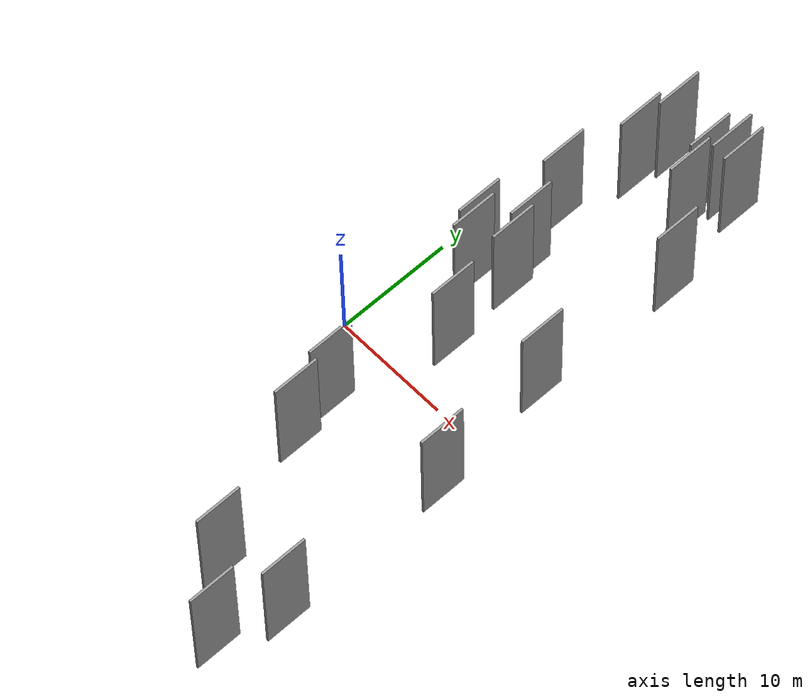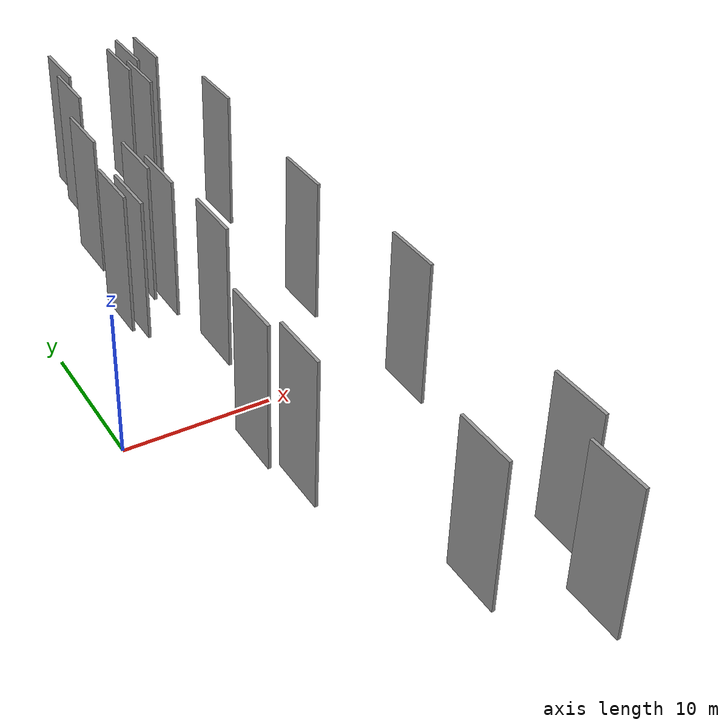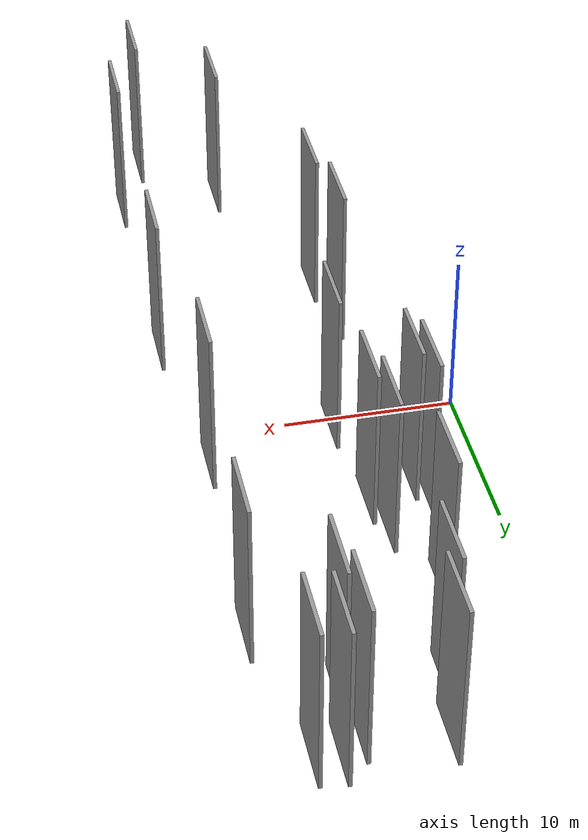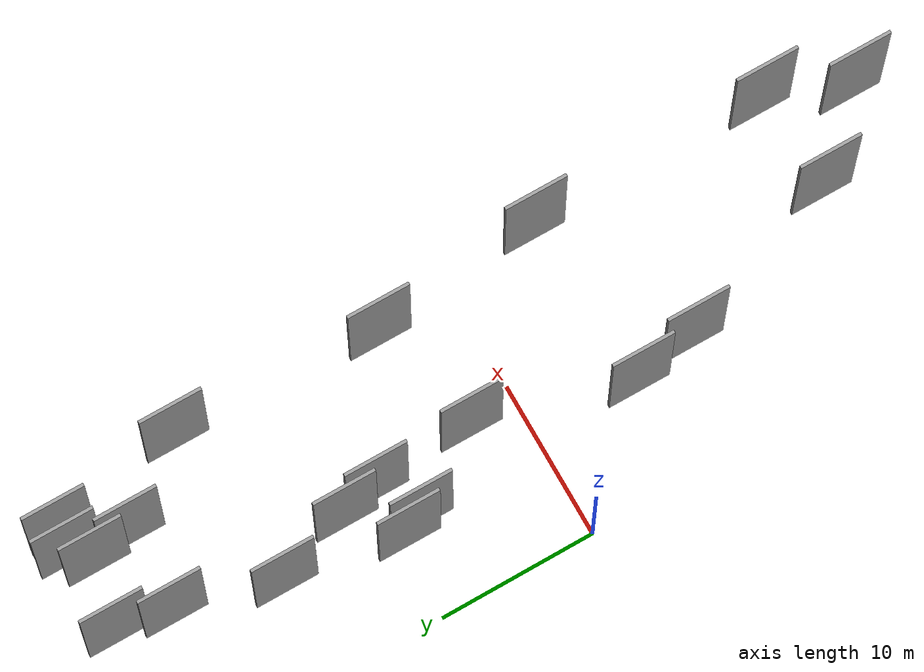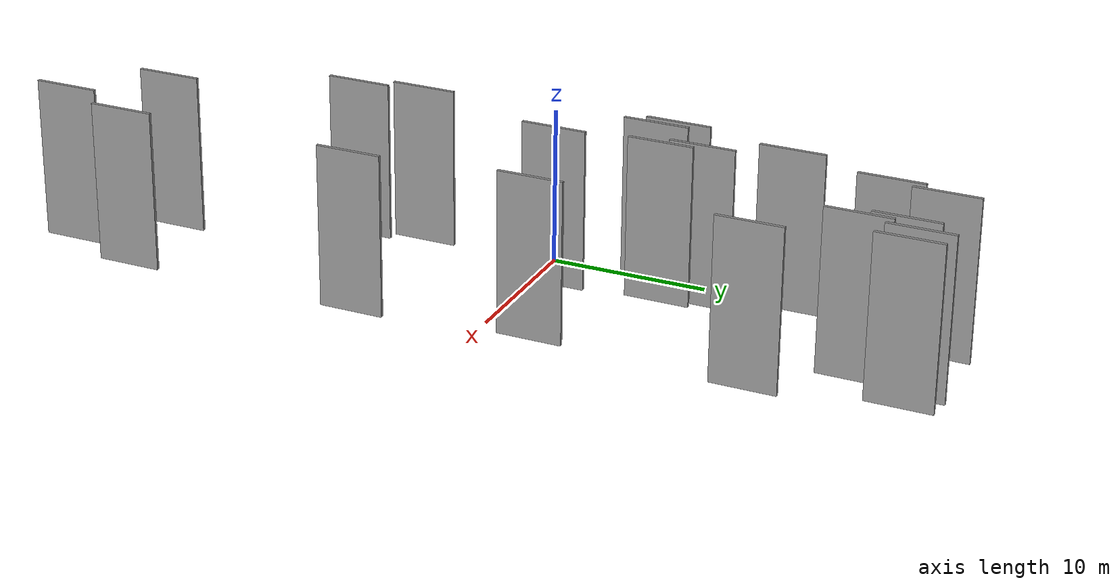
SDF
<sdf version="1.6">
 <world name="default">
  <scene>
   <sky><clouds><speed>12</speed></clouds></sky>
   <ambient>0.4 0.4 0.4 1</ambient>
   <background>0.7 0.7 0.7 1</background>
   <shadows>1</shadows>
  </scene>
  <gravity>0 0 -9.8066</gravity>
  <magnetic_field>6e-06 2.3e-05 -4.2e-05</magnetic_field>
  <physics default="0" name="default_physics" type="ode">
   <ode>
    <solver>
     <type>quick</type>
     <iters>10</iters>
     <sor>1.0</sor>
     <use_dynamic_moi_rescaling>0</use_dynamic_moi_rescaling>
    </solver>
    <constraints>
     <cfm>0</cfm>
     <erp>0.2</erp>
     <contact_max_correcting_vel>100</contact_max_correcting_vel>
     <contact_surface_layer>0.001</contact_surface_layer>
    </constraints>
   </ode>
   <max_step_size>0.004</max_step_size>
   <real_time_factor>1</real_time_factor>
   <real_time_update_rate>250</real_time_update_rate>
  </physics>
  <light name="sun" type="directional">
   <pose>0 0 10 0 0 0</pose>
   <diffuse>0.8 0.8 0.8 1</diffuse>
   <specular>0.2 0.2 0.2 1</specular>
   <attenuation>
    <range>1000</range>
    <constant>0.9</constant>
    <linear>0.01</linear>
    <quadratic>0.001</quadratic>
   </attenuation>
   <direction>-0.5 0.1 -0.9</direction>
  </light>
  <model name="grey_wall_1">
   <static>1</static>
   <pose>15.8943 18.3941 2.5 0.000000 0.000000 1.570796</pose>
   <link name="link">
    <pose>0 0 5.00 0 0 0</pose>
    <collision name="collision"><geometry><box><size>4.00 0.2 10.00</size></box></geometry></collision>
    <visual name="visual">
     <cast_shadows>0</cast_shadows>
     <geometry><box><size>4.00 0.2 10.00</size></box></geometry>
     <material>
      <script>
       <uri>model://grey_wall/materials/scripts</uri>
       <uri>model://grey_wall/materials/textures</uri>
       <name>vrc/grey_wall</name>
      </script>
     </material>
    </visual>
   </link>
  </model>
  <model name="grey_wall_2">
   <static>1</static>
   <pose>10.3219 -21.1300 2.5 0.000000 0.000000 1.570796</pose>
   <link name="link">
    <pose>0 0 5.00 0 0 0</pose>
    <collision name="collision"><geometry><box><size>4.00 0.2 10.00</size></box></geometry></collision>
    <visual name="visual">
     <cast_shadows>0</cast_shadows>
     <geometry><box><size>4.00 0.2 10.00</size></box></geometry>
     <material>
      <script>
       <uri>model://grey_wall/materials/scripts</uri>
       <uri>model://grey_wall/materials/textures</uri>
       <name>vrc/grey_wall</name>
      </script>
     </material>
    </visual>
   </link>
  </model>
  <model name="grey_wall_3">
   <static>1</static>
   <pose>4.2928 9.6858 2.5 0.000000 0.000000 1.570796</pose>
   <link name="link">
    <pose>0 0 5.00 0 0 0</pose>
    <collision name="collision"><geometry><box><size>4.00 0.2 10.00</size></box></geometry></collision>
    <visual name="visual">
     <cast_shadows>0</cast_shadows>
     <geometry><box><size>4.00 0.2 10.00</size></box></geometry>
     <material>
      <script>
       <uri>model://grey_wall/materials/scripts</uri>
       <uri>model://grey_wall/materials/textures</uri>
       <name>vrc/grey_wall</name>
      </script>
     </material>
    </visual>
   </link>
  </model>
  <model name="grey_wall_4">
   <static>1</static>
   <pose>12.9460 26.9286 2.5 0.000000 0.000000 1.570796</pose>
   <link name="link">
    <pose>0 0 5.00 0 0 0</pose>
    <collision name="collision"><geometry><box><size>4.00 0.2 10.00</size></box></geometry></collision>
    <visual name="visual">
     <cast_shadows>0</cast_shadows>
     <geometry><box><size>4.00 0.2 10.00</size></box></geometry>
     <material>
      <script>
       <uri>model://grey_wall/materials/scripts</uri>
       <uri>model://grey_wall/materials/textures</uri>
       <name>vrc/grey_wall</name>
      </script>
     </material>
    </visual>
   </link>
  </model>
  <model name="grey_wall_5">
   <static>1</static>
   <pose>16.4729 -5.4842 2.5 0.000000 0.000000 1.570796</pose>
   <link name="link">
    <pose>0 0 5.00 0 0 0</pose>
    <collision name="collision"><geometry><box><size>4.00 0.2 10.00</size></box></geometry></collision>
    <visual name="visual">
     <cast_shadows>0</cast_shadows>
     <geometry><box><size>4.00 0.2 10.00</size></box></geometry>
     <material>
      <script>
       <uri>model://grey_wall/materials/scripts</uri>
       <uri>model://grey_wall/materials/textures</uri>
       <name>vrc/grey_wall</name>
      </script>
     </material>
    </visual>
   </link>
  </model>
  <model name="grey_wall_6">
   <static>1</static>
   <pose>5.6168 -6.1962 2.5 0.000000 0.000000 1.570796</pose>
   <link name="link">
    <pose>0 0 5.00 0 0 0</pose>
    <collision name="collision"><geometry><box><size>4.00 0.2 10.00</size></box></geometry></collision>
    <visual name="visual">
     <cast_shadows>0</cast_shadows>
     <geometry><box><size>4.00 0.2 10.00</size></box></geometry>
     <material>
      <script>
       <uri>model://grey_wall/materials/scripts</uri>
       <uri>model://grey_wall/materials/textures</uri>
       <name>vrc/grey_wall</name>
      </script>
     </material>
    </visual>
   </link>
  </model>
  <model name="grey_wall_7">
   <static>1</static>
   <pose>15.3917 5.3323 2.5 0.000000 0.000000 1.570796</pose>
   <link name="link">
    <pose>0 0 5.00 0 0 0</pose>
    <collision name="collision"><geometry><box><size>4.00 0.2 10.00</size></box></geometry></collision>
    <visual name="visual">
     <cast_shadows>0</cast_shadows>
     <geometry><box><size>4.00 0.2 10.00</size></box></geometry>
     <material>
      <script>
       <uri>model://grey_wall/materials/scripts</uri>
       <uri>model://grey_wall/materials/textures</uri>
       <name>vrc/grey_wall</name>
      </script>
     </material>
    </visual>
   </link>
  </model>
  <model name="grey_wall_8">
   <static>1</static>
   <pose>11.7947 25.7970 2.5 0.000000 0.000000 1.570796</pose>
   <link name="link">
    <pose>0 0 5.00 0 0 0</pose>
    <collision name="collision"><geometry><box><size>4.00 0.2 10.00</size></box></geometry></collision>
    <visual name="visual">
     <cast_shadows>0</cast_shadows>
     <geometry><box><size>4.00 0.2 10.00</size></box></geometry>
     <material>
      <script>
       <uri>model://grey_wall/materials/scripts</uri>
       <uri>model://grey_wall/materials/textures</uri>
       <name>vrc/grey_wall</name>
      </script>
     </material>
    </visual>
   </link>
  </model>
  <model name="grey_wall_9">
   <static>1</static>
   <pose>6.3567 -10.1905 2.5 0.000000 0.000000 1.570796</pose>
   <link name="link">
    <pose>0 0 5.00 0 0 0</pose>
    <collision name="collision"><geometry><box><size>4.00 0.2 10.00</size></box></geometry></collision>
    <visual name="visual">
     <cast_shadows>0</cast_shadows>
     <geometry><box><size>4.00 0.2 10.00</size></box></geometry>
     <material>
      <script>
       <uri>model://grey_wall/materials/scripts</uri>
       <uri>model://grey_wall/materials/textures</uri>
       <name>vrc/grey_wall</name>
      </script>
     </material>
    </visual>
   </link>
  </model>
  <model name="grey_wall_10">
   <static>1</static>
   <pose>7.0069 23.4087 2.5 0.000000 0.000000 1.570796</pose>
   <link name="link">
    <pose>0 0 5.00 0 0 0</pose>
    <collision name="collision"><geometry><box><size>4.00 0.2 10.00</size></box></geometry></collision>
    <visual name="visual">
     <cast_shadows>0</cast_shadows>
     <geometry><box><size>4.00 0.2 10.00</size></box></geometry>
     <material>
      <script>
       <uri>model://grey_wall/materials/scripts</uri>
       <uri>model://grey_wall/materials/textures</uri>
       <name>vrc/grey_wall</name>
      </script>
     </material>
    </visual>
   </link>
  </model>
  <model name="grey_wall_11">
   <static>1</static>
   <pose>14.3197 26.7380 2.5 0.000000 0.000000 1.570796</pose>
   <link name="link">
    <pose>0 0 5.00 0 0 0</pose>
    <collision name="collision"><geometry><box><size>4.00 0.2 10.00</size></box></geometry></collision>
    <visual name="visual">
     <cast_shadows>0</cast_shadows>
     <geometry><box><size>4.00 0.2 10.00</size></box></geometry>
     <material>
      <script>
       <uri>model://grey_wall/materials/scripts</uri>
       <uri>model://grey_wall/materials/textures</uri>
       <name>vrc/grey_wall</name>
      </script>
     </material>
    </visual>
   </link>
  </model>
  <model name="grey_wall_12">
   <static>1</static>
   <pose>5.4234 17.0905 2.5 0.000000 0.000000 1.570796</pose>
   <link name="link">
    <pose>0 0 5.00 0 0 0</pose>
    <collision name="collision"><geometry><box><size>4.00 0.2 10.00</size></box></geometry></collision>
    <visual name="visual">
     <cast_shadows>0</cast_shadows>
     <geometry><box><size>4.00 0.2 10.00</size></box></geometry>
     <material>
      <script>
       <uri>model://grey_wall/materials/scripts</uri>
       <uri>model://grey_wall/materials/textures</uri>
       <name>vrc/grey_wall</name>
      </script>
     </material>
    </visual>
   </link>
  </model>
  <model name="grey_wall_13">
   <static>1</static>
   <pose>8.1016 3.4651 2.5 0.000000 0.000000 1.570796</pose>
   <link name="link">
    <pose>0 0 5.00 0 0 0</pose>
    <collision name="collision"><geometry><box><size>4.00 0.2 10.00</size></box></geometry></collision>
    <visual name="visual">
     <cast_shadows>0</cast_shadows>
     <geometry><box><size>4.00 0.2 10.00</size></box></geometry>
     <material>
      <script>
       <uri>model://grey_wall/materials/scripts</uri>
       <uri>model://grey_wall/materials/textures</uri>
       <name>vrc/grey_wall</name>
      </script>
     </material>
    </visual>
   </link>
  </model>
  <model name="grey_wall_14">
   <static>1</static>
   <pose>7.0378 12.2461 2.5 0.000000 0.000000 1.570796</pose>
   <link name="link">
    <pose>0 0 5.00 0 0 0</pose>
    <collision name="collision"><geometry><box><size>4.00 0.2 10.00</size></box></geometry></collision>
    <visual name="visual">
     <cast_shadows>0</cast_shadows>
     <geometry><box><size>4.00 0.2 10.00</size></box></geometry>
     <material>
      <script>
       <uri>model://grey_wall/materials/scripts</uri>
       <uri>model://grey_wall/materials/textures</uri>
       <name>vrc/grey_wall</name>
      </script>
     </material>
    </visual>
   </link>
  </model>
  <model name="grey_wall_15">
   <static>1</static>
   <pose>7.5993 9.9114 2.5 0.000000 0.000000 1.570796</pose>
   <link name="link">
    <pose>0 0 5.00 0 0 0</pose>
    <collision name="collision"><geometry><box><size>4.00 0.2 10.00</size></box></geometry></collision>
    <visual name="visual">
     <cast_shadows>0</cast_shadows>
     <geometry><box><size>4.00 0.2 10.00</size></box></geometry>
     <material>
      <script>
       <uri>model://grey_wall/materials/scripts</uri>
       <uri>model://grey_wall/materials/textures</uri>
       <name>vrc/grey_wall</name>
      </script>
     </material>
    </visual>
   </link>
  </model>
  <model name="grey_wall_16">
   <static>1</static>
   <pose>14.6696 -25.6199 2.5 0.000000 0.000000 1.570796</pose>
   <link name="link">
    <pose>0 0 5.00 0 0 0</pose>
    <collision name="collision"><geometry><box><size>4.00 0.2 10.00</size></box></geometry></collision>
    <visual name="visual">
     <cast_shadows>0</cast_shadows>
     <geometry><box><size>4.00 0.2 10.00</size></box></geometry>
     <material>
      <script>
       <uri>model://grey_wall/materials/scripts</uri>
       <uri>model://grey_wall/materials/textures</uri>
       <name>vrc/grey_wall</name>
      </script>
     </material>
    </visual>
   </link>
  </model>
  <model name="grey_wall_17">
   <static>1</static>
   <pose>16.4983 -20.5970 2.5 0.000000 0.000000 1.570796</pose>
   <link name="link">
    <pose>0 0 5.00 0 0 0</pose>
    <collision name="collision"><geometry><box><size>4.00 0.2 10.00</size></box></geometry></collision>
    <visual name="visual">
     <cast_shadows>0</cast_shadows>
     <geometry><box><size>4.00 0.2 10.00</size></box></geometry>
     <material>
      <script>
       <uri>model://grey_wall/materials/scripts</uri>
       <uri>model://grey_wall/materials/textures</uri>
       <name>vrc/grey_wall</name>
      </script>
     </material>
    </visual>
   </link>
  </model>
  <model name="grey_wall_18">
   <static>1</static>
   <pose>4.9161 8.5361 2.5 0.000000 0.000000 1.570796</pose>
   <link name="link">
    <pose>0 0 5.00 0 0 0</pose>
    <collision name="collision"><geometry><box><size>4.00 0.2 10.00</size></box></geometry></collision>
    <visual name="visual">
     <cast_shadows>0</cast_shadows>
     <geometry><box><size>4.00 0.2 10.00</size></box></geometry>
     <material>
      <script>
       <uri>model://grey_wall/materials/scripts</uri>
       <uri>model://grey_wall/materials/textures</uri>
       <name>vrc/grey_wall</name>
      </script>
     </material>
    </visual>
   </link>
  </model>
  <model name="grey_wall_19">
   <static>1</static>
   <pose>7.6217 26.7476 2.5 0.000000 0.000000 1.570796</pose>
   <link name="link">
    <pose>0 0 5.00 0 0 0</pose>
    <collision name="collision"><geometry><box><size>4.00 0.2 10.00</size></box></geometry></collision>
    <visual name="visual">
     <cast_shadows>0</cast_shadows>
     <geometry><box><size>4.00 0.2 10.00</size></box></geometry>
     <material>
      <script>
       <uri>model://grey_wall/materials/scripts</uri>
       <uri>model://grey_wall/materials/textures</uri>
       <name>vrc/grey_wall</name>
      </script>
     </material>
    </visual>
   </link>
  </model>
  <model name="grey_wall_20">
   <static>1</static>
   <pose>12.2868 23.2757 2.5 0.000000 0.000000 1.570796</pose>
   <link name="link">
    <pose>0 0 5.00 0 0 0</pose>
    <collision name="collision"><geometry><box><size>4.00 0.2 10.00</size></box></geometry></collision>
    <visual name="visual">
     <cast_shadows>0</cast_shadows>
     <geometry><box><size>4.00 0.2 10.00</size></box></geometry>
     <material>
      <script>
       <uri>model://grey_wall/materials/scripts</uri>
       <uri>model://grey_wall/materials/textures</uri>
       <name>vrc/grey_wall</name>
      </script>
     </material>
    </visual>
   </link>
  </model>
 </world>
</sdf>
